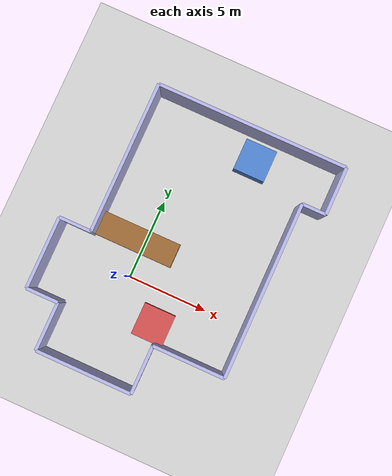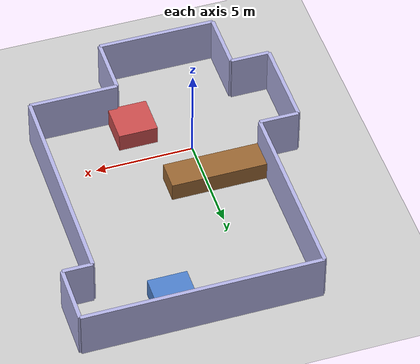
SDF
<sdf version="1.6">
 <world name="hospital_reception">
  <physics type="ode">
   <max_step_size>0.001</max_step_size>
   <real_time_factor>1</real_time_factor>
   <real_time_update_rate>1000</real_time_update_rate>
  </physics>
  <light name="sun" type="directional">
   <pose>0 0 10 0 0 0</pose>
   <diffuse>0.8 0.8 0.8 1</diffuse>
   <specular>0.2 0.2 0.2 1</specular>
   <attenuation>
    <range>1000</range>
    <constant>0.9</constant>
    <linear>0.01</linear>
    <quadratic>0.001</quadratic>
   </attenuation>
   <direction>-0.5 0.1 -0.9</direction>
  </light>
  <model name="ground_plane">
   <static>true</static>
   <link name="link">
    <collision name="collision">
     <geometry><plane><normal>0 0 1</normal><size>100 100</size></plane></geometry>
    </collision>
    <visual name="visual">
     <geometry><plane><normal>0 0 1</normal><size>100 100</size></plane></geometry>
     <material><ambient>0.8 0.8 0.8 1</ambient><diffuse>0.8 0.8 0.8 1</diffuse></material>
    </visual>
   </link>
  </model>
  <model name="wall_alcove_left">
   <static>true</static>
   <pose>-3 -4.5 1.25 0 0 0</pose>
   <link name="link">
    <collision name="collision"><geometry><box><size>0.2 3 2.5</size></box></geometry></collision>
    <visual name="visual">
     <geometry><box><size>0.2 3 2.5</size></box></geometry>
     <material><ambient>0.7 0.7 0.9 1</ambient><diffuse>0.7 0.7 0.9 1</diffuse></material>
    </visual>
   </link>
  </model>
  <model name="wall_alcove_bottom">
   <static>true</static>
   <pose>0 -6 1.25 0 0 0</pose>
   <link name="link">
    <collision name="collision"><geometry><box><size>6 0.2 2.5</size></box></geometry></collision>
    <visual name="visual">
     <geometry><box><size>6 0.2 2.5</size></box></geometry>
     <material><ambient>0.7 0.7 0.9 1</ambient><diffuse>0.7 0.7 0.9 1</diffuse></material>
    </visual>
   </link>
  </model>
  <model name="wall_alcove_right">
   <static>true</static>
   <pose>3 -4.5 1.25 0 0 0</pose>
   <link name="link">
    <collision name="collision"><geometry><box><size>0.2 3 2.5</size></box></geometry></collision>
    <visual name="visual">
     <geometry><box><size>0.2 3 2.5</size></box></geometry>
     <material><ambient>0.7 0.7 0.9 1</ambient><diffuse>0.7 0.7 0.9 1</diffuse></material>
    </visual>
   </link>
  </model>
  <model name="wall_right_bottom">
   <static>true</static>
   <pose>5.25 -3 1.25 0 0 0</pose>
   <link name="link">
    <collision name="collision"><geometry><box><size>4.5 0.2 2.5</size></box></geometry></collision>
    <visual name="visual">
     <geometry><box><size>4.5 0.2 2.5</size></box></geometry>
     <material><ambient>0.7 0.7 0.9 1</ambient><diffuse>0.7 0.7 0.9 1</diffuse></material>
    </visual>
   </link>
  </model>
  <model name="wall_right">
   <static>true</static>
   <pose>7.5 2.5 1.25 0 0 0</pose>
   <link name="link">
    <collision name="collision"><geometry><box><size>0.2 11 2.5</size></box></geometry></collision>
    <visual name="visual">
     <geometry><box><size>0.2 11 2.5</size></box></geometry>
     <material><ambient>0.7 0.7 0.9 1</ambient><diffuse>0.7 0.7 0.9 1</diffuse></material>
    </visual>
   </link>
  </model>
  <model name="wall_rightwing_bottom">
   <static>true</static>
   <pose>8.25 8 1.25 0 0 0</pose>
   <link name="link">
    <collision name="collision"><geometry><box><size>1.5 0.2 2.5</size></box></geometry></collision>
    <visual name="visual">
     <geometry><box><size>1.5 0.2 2.5</size></box></geometry>
     <material><ambient>0.7 0.7 0.9 1</ambient><diffuse>0.7 0.7 0.9 1</diffuse></material>
    </visual>
   </link>
  </model>
  <model name="wall_rightwing_right">
   <static>true</static>
   <pose>9 9.5 1.25 0 0 0</pose>
   <link name="link">
    <collision name="collision"><geometry><box><size>0.2 3 2.5</size></box></geometry></collision>
    <visual name="visual">
     <geometry><box><size>0.2 3 2.5</size></box></geometry>
     <material><ambient>0.7 0.7 0.9 1</ambient><diffuse>0.7 0.7 0.9 1</diffuse></material>
    </visual>
   </link>
  </model>
  <model name="wall_top">
   <static>true</static>
   <pose>3 11 1.25 0 0 0</pose>
   <link name="link">
    <collision name="collision"><geometry><box><size>12 0.2 2.5</size></box></geometry></collision>
    <visual name="visual">
     <geometry><box><size>12 0.2 2.5</size></box></geometry>
     <material><ambient>0.7 0.7 0.9 1</ambient><diffuse>0.7 0.7 0.9 1</diffuse></material>
    </visual>
   </link>
  </model>
  <model name="wall_left">
   <static>true</static>
   <pose>-3 6.25 1.25 0 0 0</pose>
   <link name="link">
    <collision name="collision"><geometry><box><size>0.2 9.5 2.5</size></box></geometry></collision>
    <visual name="visual">
     <geometry><box><size>0.2 9.5 2.5</size></box></geometry>
     <material><ambient>0.7 0.7 0.9 1</ambient><diffuse>0.7 0.7 0.9 1</diffuse></material>
    </visual>
   </link>
  </model>
  <model name="wall_leftwing_top">
   <static>true</static>
   <pose>-4 1.5 1.25 0 0 0</pose>
   <link name="link">
    <collision name="collision"><geometry><box><size>2 0.2 2.5</size></box></geometry></collision>
    <visual name="visual">
     <geometry><box><size>2 0.2 2.5</size></box></geometry>
     <material><ambient>0.7 0.7 0.9 1</ambient><diffuse>0.7 0.7 0.9 1</diffuse></material>
    </visual>
   </link>
  </model>
  <model name="wall_leftwing_left">
   <static>true</static>
   <pose>-5 -0.75 1.25 0 0 0</pose>
   <link name="link">
    <collision name="collision"><geometry><box><size>0.2 4.5 2.5</size></box></geometry></collision>
    <visual name="visual">
     <geometry><box><size>0.2 4.5 2.5</size></box></geometry>
     <material><ambient>0.7 0.7 0.9 1</ambient><diffuse>0.7 0.7 0.9 1</diffuse></material>
    </visual>
   </link>
  </model>
  <model name="wall_leftwing_bottom">
   <static>true</static>
   <pose>-4 -3 1.25 0 0 0</pose>
   <link name="link">
    <collision name="collision"><geometry><box><size>2 0.2 2.5</size></box></geometry></collision>
    <visual name="visual">
     <geometry><box><size>2 0.2 2.5</size></box></geometry>
     <material><ambient>0.7 0.7 0.9 1</ambient><diffuse>0.7 0.7 0.9 1</diffuse></material>
    </visual>
   </link>
  </model>
  <model name="box1_reception">
   <static>true</static>
   <pose>-0.5 2.25 0.5 0 0 0</pose>
   <link name="link">
    <collision name="collision"><geometry><box><size>5 1.5 1.0</size></box></geometry></collision>
    <visual name="visual">
     <geometry><box><size>5 1.5 1.0</size></box></geometry>
     <material><ambient>0.6 0.4 0.2 1</ambient><diffuse>0.6 0.4 0.2 1</diffuse></material>
    </visual>
   </link>
  </model>
  <model name="box2_storage">
   <static>true</static>
   <pose>4 9.5 0.5 0 0 0</pose>
   <link name="link">
    <collision name="collision"><geometry><box><size>2 2 1.0</size></box></geometry></collision>
    <visual name="visual">
     <geometry><box><size>2 2 1.0</size></box></geometry>
     <material><ambient>0.3 0.5 0.8 1</ambient><diffuse>0.3 0.5 0.8 1</diffuse></material>
    </visual>
   </link>
  </model>
  <model name="box3_corridor">
   <static>true</static>
   <pose>2.5 -2 0.5 0 0 0</pose>
   <link name="link">
    <collision name="collision"><geometry><box><size>2 2 1.0</size></box></geometry></collision>
    <visual name="visual">
     <geometry><box><size>2 2 1.0</size></box></geometry>
     <material><ambient>0.8 0.3 0.3 1</ambient><diffuse>0.8 0.3 0.3 1</diffuse></material>
    </visual>
   </link>
  </model>
 </world>
</sdf>
